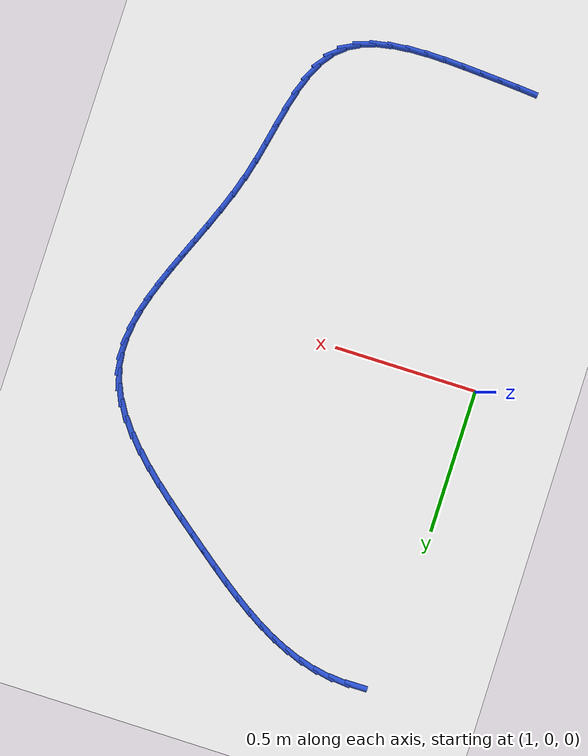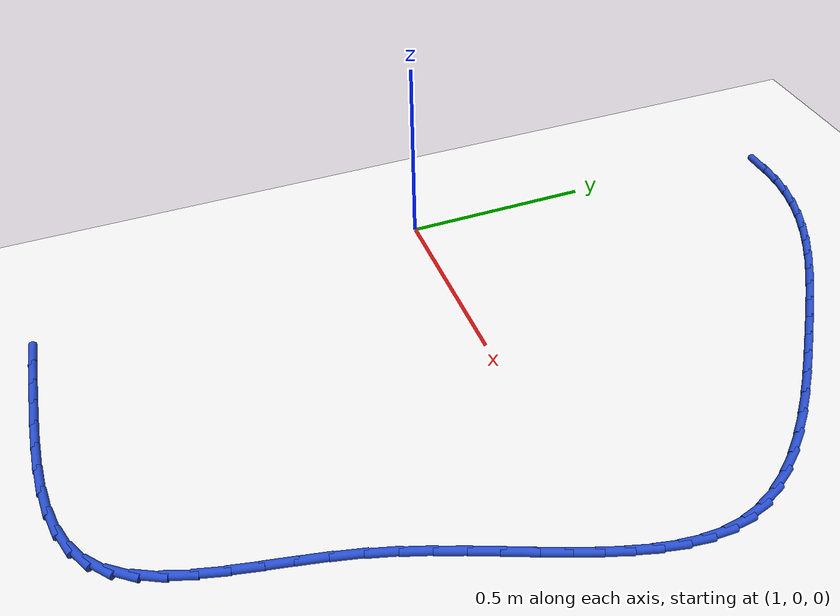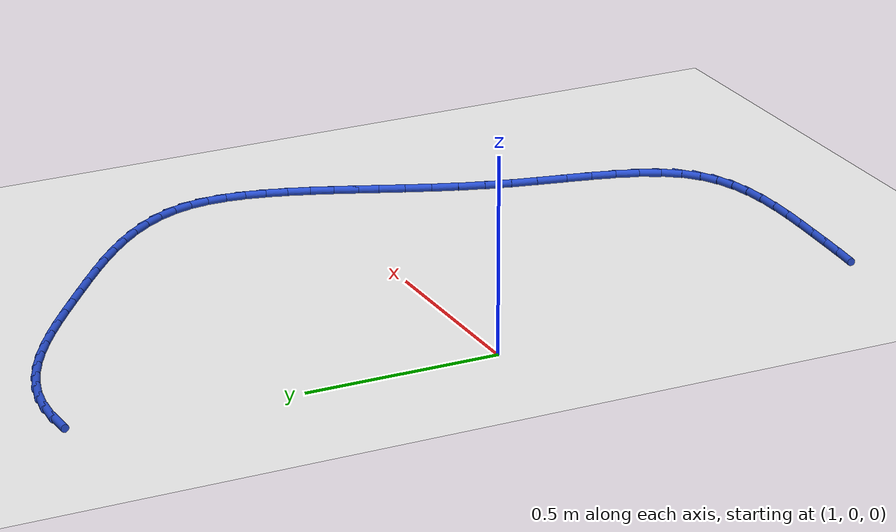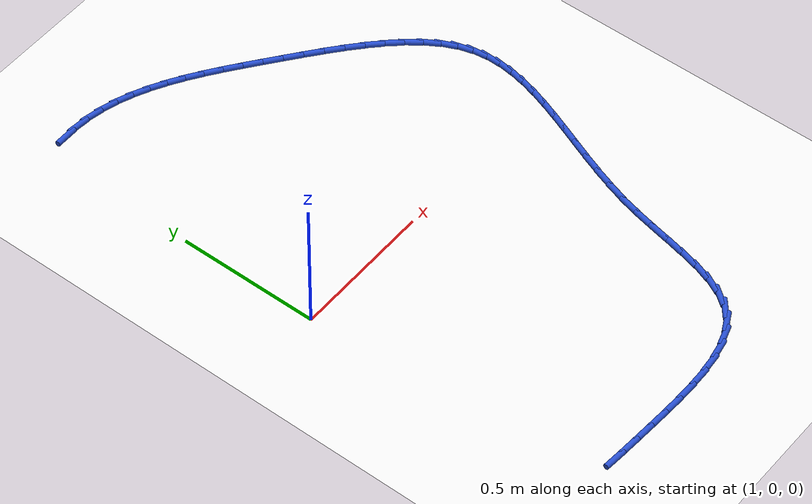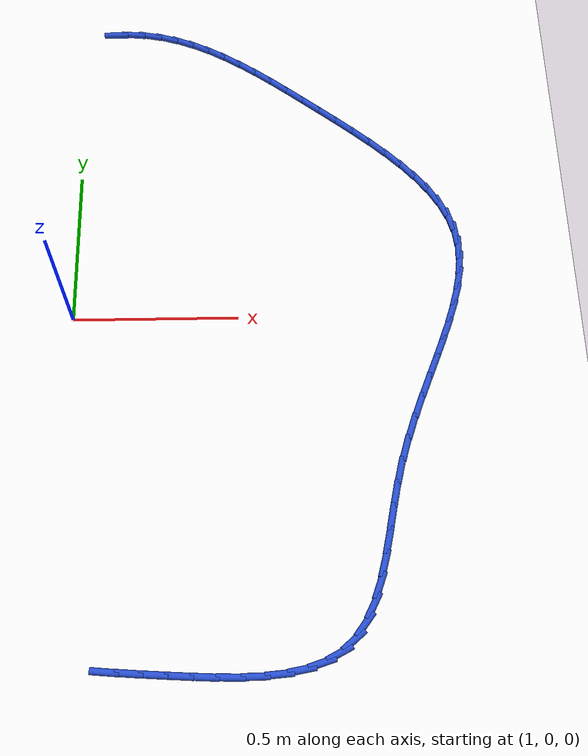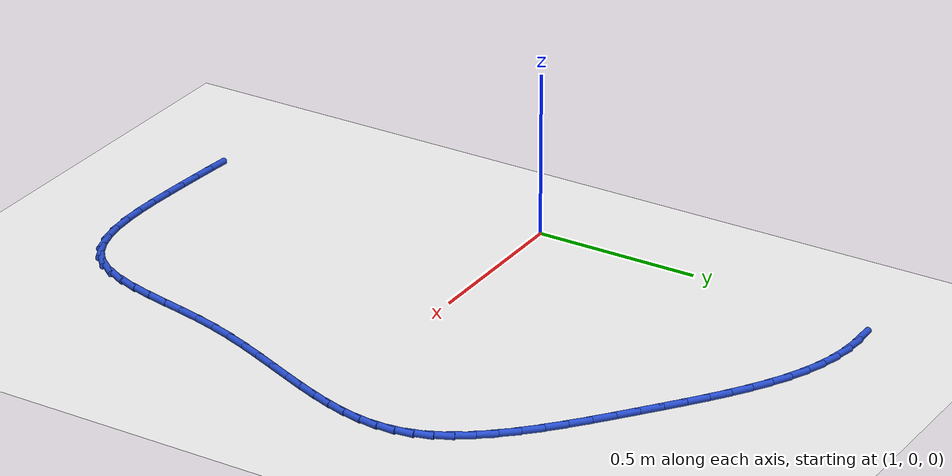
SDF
<sdf version="1.6">
 <world name="default">
  <model name="ground_plane">
   <static>1</static>
   <link name="link">
    <collision name="collision">
     <geometry><plane><normal>0 0 1</normal><size>100 100</size></plane></geometry>
     <surface><friction><ode><mu>100</mu><mu2>50</mu2></ode></friction></surface>
    </collision>
    <visual name="visual">
     <cast_shadows>0</cast_shadows>
     <geometry><plane><normal>0 0 1</normal><size>100 100</size></plane></geometry>
     <material>
      <script><uri>file://media/materials/scripts/gazebo.material</uri><name>Gazebo/WhiteGlow</name></script>
     </material>
    </visual>
   </link>
  </model>
  <model name="line">
   <link name="link_27">
    <pose>1.0877395246062442 1.07236111550204 0.01 0 1.57 0.007127805576924916</pose>
    <collision name="collision">
     <geometry><cylinder><radius>0.01</radius><length>0.08</length></cylinder></geometry>
    </collision>
    <visual name="visual">
     <material>
      <script><name>Gazebo/Blue</name><uri>file://media/materials/scripts/gazebo.material</uri></script>
     </material>
     <geometry><cylinder><radius>0.01</radius><length>0.08</length></cylinder></geometry>
    </visual>
   </link>
   <link name="link_28">
    <pose>1.1466282684342541 1.0727808701273698 0.01 0 1.57 -0.09570957272934058</pose>
    <collision name="collision">
     <geometry><cylinder><radius>0.01</radius><length>0.08</length></cylinder></geometry>
    </collision>
    <visual name="visual">
     <material>
      <script><name>Gazebo/Blue</name><uri>file://media/materials/scripts/gazebo.material</uri></script>
     </material>
     <geometry><cylinder><radius>0.01</radius><length>0.08</length></cylinder></geometry>
    </visual>
   </link>
   <link name="link_29">
    <pose>1.2043351831482425 1.0672408394816044 0.01 0 1.57 -0.19996147020917304</pose>
    <collision name="collision">
     <geometry><cylinder><radius>0.01</radius><length>0.08</length></cylinder></geometry>
    </collision>
    <visual name="visual">
     <material>
      <script><name>Gazebo/Blue</name><uri>file://media/materials/scripts/gazebo.material</uri></script>
     </material>
     <geometry><cylinder><radius>0.01</radius><length>0.08</length></cylinder></geometry>
    </visual>
   </link>
   <link name="link_30">
    <pose>1.2608241019584034 1.055792234667877 0.01 0 1.57 -0.2948685593442447</pose>
    <collision name="collision">
     <geometry><cylinder><radius>0.01</radius><length>0.08</length></cylinder></geometry>
    </collision>
    <visual name="visual">
     <material>
      <script><name>Gazebo/Blue</name><uri>file://media/materials/scripts/gazebo.material</uri></script>
     </material>
     <geometry><cylinder><radius>0.01</radius><length>0.08</length></cylinder></geometry>
    </visual>
   </link>
   <link name="link_31">
    <pose>1.3162611271511389 1.038954754557548 0.01 0 1.57 -0.3784954328951223</pose>
    <collision name="collision">
     <geometry><cylinder><radius>0.01</radius><length>0.08</length></cylinder></geometry>
    </collision>
    <visual name="visual">
     <material>
      <script><name>Gazebo/Blue</name><uri>file://media/materials/scripts/gazebo.material</uri></script>
     </material>
     <geometry><cylinder><radius>0.01</radius><length>0.08</length></cylinder></geometry>
    </visual>
   </link>
   <link name="link_32">
    <pose>1.3708172663647749 1.0172594596073372 0.01 0 1.57 -0.4501707449325843</pose>
    <collision name="collision">
     <geometry><cylinder><radius>0.01</radius><length>0.08</length></cylinder></geometry>
    </collision>
    <visual name="visual">
     <material>
      <script><name>Gazebo/Blue</name><uri>file://media/materials/scripts/gazebo.material</uri></script>
     </material>
     <geometry><cylinder><radius>0.01</radius><length>0.08</length></cylinder></geometry>
    </visual>
   </link>
   <link name="link_33">
    <pose>1.4246635272376371 0.9912374102739651 0.01 0 1.57 -0.5099969988329177</pose>
    <collision name="collision">
     <geometry><cylinder><radius>0.01</radius><length>0.08</length></cylinder></geometry>
    </collision>
    <visual name="visual">
     <material>
      <script><name>Gazebo/Blue</name><uri>file://media/materials/scripts/gazebo.material</uri></script>
     </material>
     <geometry><cylinder><radius>0.01</radius><length>0.08</length></cylinder></geometry>
    </visual>
   </link>
   <link name="link_34">
    <pose>1.477970917408052 0.9614196670141517 0.01 0 1.57 -0.5585337356996433</pose>
    <collision name="collision">
     <geometry><cylinder><radius>0.01</radius><length>0.08</length></cylinder></geometry>
    </collision>
    <visual name="visual">
     <material>
      <script><name>Gazebo/Blue</name><uri>file://media/materials/scripts/gazebo.material</uri></script>
     </material>
     <geometry><cylinder><radius>0.01</radius><length>0.08</length></cylinder></geometry>
    </visual>
   </link>
   <link name="link_35">
    <pose>1.5309104445143444 0.9283372902846164 0.01 0 1.57 -0.5965402304207557</pose>
    <collision name="collision">
     <geometry><cylinder><radius>0.01</radius><length>0.08</length></cylinder></geometry>
    </collision>
    <visual name="visual">
     <material>
      <script><name>Gazebo/Blue</name><uri>file://media/materials/scripts/gazebo.material</uri></script>
     </material>
     <geometry><cylinder><radius>0.01</radius><length>0.08</length></cylinder></geometry>
    </visual>
   </link>
   <link name="link_36">
    <pose>1.5836531161948413 0.8925213405420802 0.01 0 1.57 -0.6248015395837749</pose>
    <collision name="collision">
     <geometry><cylinder><radius>0.01</radius><length>0.08</length></cylinder></geometry>
    </collision>
    <visual name="visual">
     <material>
      <script><name>Gazebo/Blue</name><uri>file://media/materials/scripts/gazebo.material</uri></script>
     </material>
     <geometry><cylinder><radius>0.01</radius><length>0.08</length></cylinder></geometry>
    </visual>
   </link>
   <link name="link_37">
    <pose>1.636369940087868 0.8545028782432627 0.01 0 1.57 -0.6440266672046611</pose>
    <collision name="collision">
     <geometry><cylinder><radius>0.01</radius><length>0.08</length></cylinder></geometry>
    </collision>
    <visual name="visual">
     <material>
      <script><name>Gazebo/Blue</name><uri>file://media/materials/scripts/gazebo.material</uri></script>
     </material>
     <geometry><cylinder><radius>0.01</radius><length>0.08</length></cylinder></geometry>
    </visual>
   </link>
   <link name="link_38">
    <pose>1.689231923831751 0.8148129638448842 0.01 0 1.57 -0.6547975574508484</pose>
    <collision name="collision">
     <geometry><cylinder><radius>0.01</radius><length>0.08</length></cylinder></geometry>
    </collision>
    <visual name="visual">
     <material>
      <script><name>Gazebo/Blue</name><uri>file://media/materials/scripts/gazebo.material</uri></script>
     </material>
     <geometry><cylinder><radius>0.01</radius><length>0.08</length></cylinder></geometry>
    </visual>
   </link>
   <link name="link_39">
    <pose>1.742410075064815 0.7739826578036646 0.01 0 1.57 -0.6584930236418793</pose>
    <collision name="collision">
     <geometry><cylinder><radius>0.01</radius><length>0.08</length></cylinder></geometry>
    </collision>
    <visual name="visual">
     <material>
      <script><name>Gazebo/Blue</name><uri>file://media/materials/scripts/gazebo.material</uri></script>
     </material>
     <geometry><cylinder><radius>0.01</radius><length>0.08</length></cylinder></geometry>
    </visual>
   </link>
   <link name="link_40">
    <pose>1.7960160230123785 0.7325081086991896 0.01 0 1.57 -0.6651095881403096</pose>
    <collision name="collision">
     <geometry><cylinder><radius>0.01</radius><length>0.08</length></cylinder></geometry>
    </collision>
    <visual name="visual">
     <material>
      <script><name>Gazebo/Blue</name><uri>file://media/materials/scripts/gazebo.material</uri></script>
     </material>
     <geometry><cylinder><radius>0.01</radius><length>0.08</length></cylinder></geometry>
    </visual>
   </link>
   <link name="link_41">
    <pose>1.8495456919876698 0.6905234578906978 0.01 0 1.57 -0.6805926360020078</pose>
    <collision name="collision">
     <geometry><cylinder><radius>0.01</radius><length>0.08</length></cylinder></geometry>
    </collision>
    <visual name="visual">
     <material>
      <script><name>Gazebo/Blue</name><uri>file://media/materials/scripts/gazebo.material</uri></script>
     </material>
     <geometry><cylinder><radius>0.01</radius><length>0.08</length></cylinder></geometry>
    </visual>
   </link>
   <link name="link_42">
    <pose>1.9021305388110337 0.6479485559929223 0.01 0 1.57 -0.7055952705035884</pose>
    <collision name="collision">
     <geometry><cylinder><radius>0.01</radius><length>0.08</length></cylinder></geometry>
    </collision>
    <visual name="visual">
     <material>
      <script><name>Gazebo/Blue</name><uri>file://media/materials/scripts/gazebo.material</uri></script>
     </material>
     <geometry><cylinder><radius>0.01</radius><length>0.08</length></cylinder></geometry>
    </visual>
   </link>
   <link name="link_43">
    <pose>1.9528972615438622 0.604700455681087 0.01 0 1.57 -0.741214612557717</pose>
    <collision name="collision">
     <geometry><cylinder><radius>0.01</radius><length>0.08</length></cylinder></geometry>
    </collision>
    <visual name="visual">
     <material>
      <script><name>Gazebo/Blue</name><uri>file://media/materials/scripts/gazebo.material</uri></script>
     </material>
     <geometry><cylinder><radius>0.01</radius><length>0.08</length></cylinder></geometry>
    </visual>
   </link>
   <link name="link_44">
    <pose>2.0009725582475477 0.5606962096304146 0.01 0 1.57 -0.7891223300053972</pose>
    <collision name="collision">
     <geometry><cylinder><radius>0.01</radius><length>0.08</length></cylinder></geometry>
    </collision>
    <visual name="visual">
     <material>
      <script><name>Gazebo/Blue</name><uri>file://media/materials/scripts/gazebo.material</uri></script>
     </material>
     <geometry><cylinder><radius>0.01</radius><length>0.08</length></cylinder></geometry>
    </visual>
   </link>
   <link name="link_45">
    <pose>2.045483126983483 0.5158528705161288 0.01 0 1.57 -0.8516219976016098</pose>
    <collision name="collision">
     <geometry><cylinder><radius>0.01</radius><length>0.08</length></cylinder></geometry>
    </collision>
    <visual name="visual">
     <material>
      <script><name>Gazebo/Blue</name><uri>file://media/materials/scripts/gazebo.material</uri></script>
     </material>
     <geometry><cylinder><radius>0.01</radius><length>0.08</length></cylinder></geometry>
    </visual>
   </link>
   <link name="link_46">
    <pose>2.0855556658130596 0.4700874910134528 0.01 0 1.57 -0.9316411941706095</pose>
    <collision name="collision">
     <geometry><cylinder><radius>0.01</radius><length>0.08</length></cylinder></geometry>
    </collision>
    <visual name="visual">
     <material>
      <script><name>Gazebo/Blue</name><uri>file://media/materials/scripts/gazebo.material</uri></script>
     </material>
     <geometry><cylinder><radius>0.01</radius><length>0.08</length></cylinder></geometry>
    </visual>
   </link>
   <link name="link_47">
    <pose>2.1203168727976704 0.42331712379760994 0.01 0 1.57 -1.032506040386779</pose>
    <collision name="collision">
     <geometry><cylinder><radius>0.01</radius><length>0.08</length></cylinder></geometry>
    </collision>
    <visual name="visual">
     <material>
      <script><name>Gazebo/Blue</name><uri>file://media/materials/scripts/gazebo.material</uri></script>
     </material>
     <geometry><cylinder><radius>0.01</radius><length>0.08</length></cylinder></geometry>
    </visual>
   </link>
   <link name="link_48">
    <pose>2.1488934459987084 0.3754588215438235 0.01 0 1.57 -1.1572160532332605</pose>
    <collision name="collision">
     <geometry><cylinder><radius>0.01</radius><length>0.08</length></cylinder></geometry>
    </collision>
    <visual name="visual">
     <material>
      <script><name>Gazebo/Blue</name><uri>file://media/materials/scripts/gazebo.material</uri></script>
     </material>
     <geometry><cylinder><radius>0.01</radius><length>0.08</length></cylinder></geometry>
    </visual>
   </link>
   <link name="link_49">
    <pose>2.1704120834775664 0.32642963692731686 0.01 0 1.57 -1.3063284636319465</pose>
    <collision name="collision">
     <geometry><cylinder><radius>0.01</radius><length>0.08</length></cylinder></geometry>
    </collision>
    <visual name="visual">
     <material>
      <script><name>Gazebo/Blue</name><uri>file://media/materials/scripts/gazebo.material</uri></script>
     </material>
     <geometry><cylinder><radius>0.01</radius><length>0.08</length></cylinder></geometry>
    </visual>
   </link>
   <link name="link_50">
    <pose>2.1840288956430958 0.2761480876895391 0.01 0 1.57 -1.4611248681924276</pose>
    <collision name="collision">
     <geometry><cylinder><radius>0.01</radius><length>0.08</length></cylinder></geometry>
    </collision>
    <visual name="visual">
     <material>
      <script><name>Gazebo/Blue</name><uri>file://media/materials/scripts/gazebo.material</uri></script>
     </material>
     <geometry><cylinder><radius>0.01</radius><length>0.08</length></cylinder></geometry>
    </visual>
   </link>
   <link name="link_51">
    <pose>2.189708004750599 0.22457293966393402 0.01 0 1.57 1.544209983054725</pose>
    <collision name="collision">
     <geometry><cylinder><radius>0.01</radius><length>0.08</length></cylinder></geometry>
    </collision>
    <visual name="visual">
     <material>
      <script><name>Gazebo/Blue</name><uri>file://media/materials/scripts/gazebo.material</uri></script>
     </material>
     <geometry><cylinder><radius>0.01</radius><length>0.08</length></cylinder></geometry>
    </visual>
   </link>
   <link name="link_52">
    <pose>2.1883021673802143 0.17170722268355415 0.01 0 1.57 1.4314956053360388</pose>
    <collision name="collision">
     <geometry><cylinder><radius>0.01</radius><length>0.08</length></cylinder></geometry>
    </collision>
    <visual name="visual">
     <material>
      <script><name>Gazebo/Blue</name><uri>file://media/materials/scripts/gazebo.material</uri></script>
     </material>
     <geometry><cylinder><radius>0.01</radius><length>0.08</length></cylinder></geometry>
    </visual>
   </link>
   <link name="link_53">
    <pose>2.18070972269254 0.1175562371074352 0.01 0 1.57 1.3424743796786727</pose>
    <collision name="collision">
     <geometry><cylinder><radius>0.01</radius><length>0.08</length></cylinder></geometry>
    </collision>
    <visual name="visual">
     <material>
      <script><name>Gazebo/Blue</name><uri>file://media/materials/scripts/gazebo.material</uri></script>
     </material>
     <geometry><cylinder><radius>0.01</radius><length>0.08</length></cylinder></geometry>
    </visual>
   </link>
   <link name="link_54">
    <pose>2.167829009848174 0.062125283294612546 0.01 0 1.57 1.2751552189835038</pose>
    <collision name="collision">
     <geometry><cylinder><radius>0.01</radius><length>0.08</length></cylinder></geometry>
    </collision>
    <visual name="visual">
     <material>
      <script><name>Gazebo/Blue</name><uri>file://media/materials/scripts/gazebo.material</uri></script>
     </material>
     <geometry><cylinder><radius>0.01</radius><length>0.08</length></cylinder></geometry>
    </visual>
   </link>
   <link name="link_55">
    <pose>2.1505583680077156 0.005419661604121745 0.01 0 1.57 1.2269025544419423</pose>
    <collision name="collision">
     <geometry><cylinder><radius>0.01</radius><length>0.08</length></cylinder></geometry>
    </collision>
    <visual name="visual">
     <material>
      <script><name>Gazebo/Blue</name><uri>file://media/materials/scripts/gazebo.material</uri></script>
     </material>
     <geometry><cylinder><radius>0.01</radius><length>0.08</length></cylinder></geometry>
    </visual>
   </link>
   <link name="link_56">
    <pose>2.1297961363317635 -0.052555327605001284 0.01 0 1.57 1.1952495765652593</pose>
    <collision name="collision">
     <geometry><cylinder><radius>0.01</radius><length>0.08</length></cylinder></geometry>
    </collision>
    <visual name="visual">
     <material>
      <script><name>Gazebo/Blue</name><uri>file://media/materials/scripts/gazebo.material</uri></script>
     </material>
     <geometry><cylinder><radius>0.01</radius><length>0.08</length></cylinder></geometry>
    </visual>
   </link>
   <link name="link_57">
    <pose>2.1064406539809153 -0.11179438397372221 0.01 0 1.57 1.1782189396695175</pose>
    <collision name="collision">
     <geometry><cylinder><radius>0.01</radius><length>0.08</length></cylinder></geometry>
    </collision>
    <visual name="visual">
     <material>
      <script><name>Gazebo/Blue</name><uri>file://media/materials/scripts/gazebo.material</uri></script>
     </material>
     <geometry><cylinder><radius>0.01</radius><length>0.08</length></cylinder></geometry>
    </visual>
   </link>
   <link name="link_58">
    <pose>2.0813902601157706 -0.17229220714300403 0.01 0 1.57 1.1743882638601177</pose>
    <collision name="collision">
     <geometry><cylinder><radius>0.01</radius><length>0.08</length></cylinder></geometry>
    </collision>
    <visual name="visual">
     <material>
      <script><name>Gazebo/Blue</name><uri>file://media/materials/scripts/gazebo.material</uri></script>
     </material>
     <geometry><cylinder><radius>0.01</radius><length>0.08</length></cylinder></geometry>
    </visual>
   </link>
   <link name="link_59">
    <pose>2.0555432938969274 -0.2340434967538127 0.01 0 1.57 1.1828489482236368</pose>
    <collision name="collision">
     <geometry><cylinder><radius>0.01</radius><length>0.08</length></cylinder></geometry>
    </collision>
    <visual name="visual">
     <material>
      <script><name>Gazebo/Blue</name><uri>file://media/materials/scripts/gazebo.material</uri></script>
     </material>
     <geometry><cylinder><radius>0.01</radius><length>0.08</length></cylinder></geometry>
    </visual>
   </link>
   <link name="link_60">
    <pose>2.029798094484984 -0.2970429524471112 0.01 0 1.57 1.2031275303009645</pose>
    <collision name="collision">
     <geometry><cylinder><radius>0.01</radius><length>0.08</length></cylinder></geometry>
    </collision>
    <visual name="visual">
     <material>
      <script><name>Gazebo/Blue</name><uri>file://media/materials/scripts/gazebo.material</uri></script>
     </material>
     <geometry><cylinder><radius>0.01</radius><length>0.08</length></cylinder></geometry>
    </visual>
   </link>
   <link name="link_61">
    <pose>2.00505300104054 -0.3612852738638656 0.01 0 1.57 1.2350920532636136</pose>
    <collision name="collision">
     <geometry><cylinder><radius>0.01</radius><length>0.08</length></cylinder></geometry>
    </collision>
    <visual name="visual">
     <material>
      <script><name>Gazebo/Blue</name><uri>file://media/materials/scripts/gazebo.material</uri></script>
     </material>
     <geometry><cylinder><radius>0.01</radius><length>0.08</length></cylinder></geometry>
    </visual>
   </link>
   <link name="link_62">
    <pose>1.9822063527241927 -0.4267651606450388 0.01 0 1.57 1.2788384142394815</pose>
    <collision name="collision">
     <geometry><cylinder><radius>0.01</radius><length>0.08</length></cylinder></geometry>
    </collision>
    <visual name="visual">
     <material>
      <script><name>Gazebo/Blue</name><uri>file://media/materials/scripts/gazebo.material</uri></script>
     </material>
     <geometry><cylinder><radius>0.01</radius><length>0.08</length></cylinder></geometry>
    </visual>
   </link>
   <link name="link_63">
    <pose>1.962156293078304 -0.4934772099608126 0.01 0 1.57 1.3269558710448814</pose>
    <collision name="collision">
     <geometry><cylinder><radius>0.01</radius><length>0.08</length></cylinder></geometry>
    </collision>
    <visual name="visual">
     <material>
      <script><name>Gazebo/Blue</name><uri>file://media/materials/scripts/gazebo.material</uri></script>
     </material>
     <geometry><cylinder><radius>0.01</radius><length>0.08</length></cylinder></geometry>
    </visual>
   </link>
   <link name="link_64">
    <pose>1.945316824341553 -0.5611624110373826 0.01 0 1.57 1.3560875372397774</pose>
    <collision name="collision">
     <geometry><cylinder><radius>0.01</radius><length>0.08</length></cylinder></geometry>
    </collision>
    <visual name="visual">
     <material>
      <script><name>Gazebo/Blue</name><uri>file://media/materials/scripts/gazebo.material</uri></script>
     </material>
     <geometry><cylinder><radius>0.01</radius><length>0.08</length></cylinder></geometry>
    </visual>
   </link>
   <link name="link_65">
    <pose>1.93057535598583 -0.628762077365908 0.01 0 1.57 1.3618752081792236</pose>
    <collision name="collision">
     <geometry><cylinder><radius>0.01</radius><length>0.08</length></cylinder></geometry>
    </collision>
    <visual name="visual">
     <material>
      <script><name>Gazebo/Blue</name><uri>file://media/materials/scripts/gazebo.material</uri></script>
     </material>
     <geometry><cylinder><radius>0.01</radius><length>0.08</length></cylinder></geometry>
    </visual>
   </link>
   <link name="link_66">
    <pose>1.9165191516556772 -0.6950602969217937 0.01 0 1.57 1.3430298635231093</pose>
    <collision name="collision">
     <geometry><cylinder><radius>0.01</radius><length>0.08</length></cylinder></geometry>
    </collision>
    <visual name="visual">
     <material>
      <script><name>Gazebo/Blue</name><uri>file://media/materials/scripts/gazebo.material</uri></script>
     </material>
     <geometry><cylinder><radius>0.01</radius><length>0.08</length></cylinder></geometry>
    </visual>
   </link>
   <link name="link_67">
    <pose>1.901735474995637 -0.7588411576804427 0.01 0 1.57 1.2960810886293261</pose>
    <collision name="collision">
     <geometry><cylinder><radius>0.01</radius><length>0.08</length></cylinder></geometry>
    </collision>
    <visual name="visual">
     <material>
      <script><name>Gazebo/Blue</name><uri>file://media/materials/scripts/gazebo.material</uri></script>
     </material>
     <geometry><cylinder><radius>0.01</radius><length>0.08</length></cylinder></geometry>
    </visual>
   </link>
   <link name="link_68">
    <pose>1.8848115896502495 -0.8188887476172607 0.01 0 1.57 1.2149737281497803</pose>
    <collision name="collision">
     <geometry><cylinder><radius>0.01</radius><length>0.08</length></cylinder></geometry>
    </collision>
    <visual name="visual">
     <material>
      <script><name>Gazebo/Blue</name><uri>file://media/materials/scripts/gazebo.material</uri></script>
     </material>
     <geometry><cylinder><radius>0.01</radius><length>0.08</length></cylinder></geometry>
    </visual>
   </link>
   <link name="link_69">
    <pose>1.8643347592640571 -0.8739871547076505 0.01 0 1.57 1.0913222474319788</pose>
    <collision name="collision">
     <geometry><cylinder><radius>0.01</radius><length>0.08</length></cylinder></geometry>
    </collision>
    <visual name="visual">
     <material>
      <script><name>Gazebo/Blue</name><uri>file://media/materials/scripts/gazebo.material</uri></script>
     </material>
     <geometry><cylinder><radius>0.01</radius><length>0.08</length></cylinder></geometry>
    </visual>
   </link>
   <link name="link_70">
    <pose>1.8388922474816014 -0.9229204669270176 0.01 0 1.57 0.9172570257787336</pose>
    <collision name="collision">
     <geometry><cylinder><radius>0.01</radius><length>0.08</length></cylinder></geometry>
    </collision>
    <visual name="visual">
     <material>
      <script><name>Gazebo/Blue</name><uri>file://media/materials/scripts/gazebo.material</uri></script>
     </material>
     <geometry><cylinder><radius>0.01</radius><length>0.08</length></cylinder></geometry>
    </visual>
   </link>
   <link name="link_71">
    <pose>1.8070713179474247 -0.9644727722507654 0.01 0 1.57 0.6950251918182343</pose>
    <collision name="collision">
     <geometry><cylinder><radius>0.01</radius><length>0.08</length></cylinder></geometry>
    </collision>
    <visual name="visual">
     <material>
      <script><name>Gazebo/Blue</name><uri>file://media/materials/scripts/gazebo.material</uri></script>
     </material>
     <geometry><cylinder><radius>0.01</radius><length>0.08</length></cylinder></geometry>
    </visual>
   </link>
   <link name="link_72">
    <pose>1.7675022534777338 -0.9974662342418062 0.01 0 1.57 0.4736755784222673</pose>
    <collision name="collision">
     <geometry><cylinder><radius>0.01</radius><length>0.08</length></cylinder></geometry>
    </collision>
    <visual name="visual">
     <material>
      <script><name>Gazebo/Blue</name><uri>file://media/materials/scripts/gazebo.material</uri></script>
     </material>
     <geometry><cylinder><radius>0.01</radius><length>0.08</length></cylinder></geometry>
    </visual>
   </link>
   <link name="link_73">
    <pose>1.7200316793072987 -1.0217995818733676 0.01 0 1.57 0.3002941949907739</pose>
    <collision name="collision">
     <geometry><cylinder><radius>0.01</radius><length>0.08</length></cylinder></geometry>
    </collision>
    <visual name="visual">
     <material>
      <script><name>Gazebo/Blue</name><uri>file://media/materials/scripts/gazebo.material</uri></script>
     </material>
     <geometry><cylinder><radius>0.01</radius><length>0.08</length></cylinder></geometry>
    </visual>
   </link>
   <link name="link_74">
    <pose>1.665863814082675 -1.038573128545978 0.01 0 1.57 0.1724160990122847</pose>
    <collision name="collision">
     <geometry><cylinder><radius>0.01</radius><length>0.08</length></cylinder></geometry>
    </collision>
    <visual name="visual">
     <material>
      <script><name>Gazebo/Blue</name><uri>file://media/materials/scripts/gazebo.material</uri></script>
     </material>
     <geometry><cylinder><radius>0.01</radius><length>0.08</length></cylinder></geometry>
    </visual>
   </link>
   <link name="link_75">
    <pose>1.606274252757186 -1.0489503616988292 0.01 0 1.57 0.08054013449667119</pose>
    <collision name="collision">
     <geometry><cylinder><radius>0.01</radius><length>0.08</length></cylinder></geometry>
    </collision>
    <visual name="visual">
     <material>
      <script><name>Gazebo/Blue</name><uri>file://media/materials/scripts/gazebo.material</uri></script>
     </material>
     <geometry><cylinder><radius>0.01</radius><length>0.08</length></cylinder></geometry>
    </visual>
   </link>
   <link name="link_76">
    <pose>1.5425385902841537 -1.0540947687711142 0.01 0 1.57 0.016139272196341946</pose>
    <collision name="collision">
     <geometry><cylinder><radius>0.01</radius><length>0.08</length></cylinder></geometry>
    </collision>
    <visual name="visual">
     <material>
      <script><name>Gazebo/Blue</name><uri>file://media/materials/scripts/gazebo.material</uri></script>
     </material>
     <geometry><cylinder><radius>0.01</radius><length>0.08</length></cylinder></geometry>
    </visual>
   </link>
   <link name="link_77">
    <pose>1.475932421616901 -1.0551698372020246 0.01 0 1.57 -0.026837452030280172</pose>
    <collision name="collision">
     <geometry><cylinder><radius>0.01</radius><length>0.08</length></cylinder></geometry>
    </collision>
    <visual name="visual">
     <material>
      <script><name>Gazebo/Blue</name><uri>file://media/materials/scripts/gazebo.material</uri></script>
     </material>
     <geometry><cylinder><radius>0.01</radius><length>0.08</length></cylinder></geometry>
    </visual>
   </link>
   <link name="link_78">
    <pose>1.4077313417087478 -1.0533390544307524 0.01 0 1.57 -0.05210000455060438</pose>
    <collision name="collision">
     <geometry><cylinder><radius>0.01</radius><length>0.08</length></cylinder></geometry>
    </collision>
    <visual name="visual">
     <material>
      <script><name>Gazebo/Blue</name><uri>file://media/materials/scripts/gazebo.material</uri></script>
     </material>
     <geometry><cylinder><radius>0.01</radius><length>0.08</length></cylinder></geometry>
    </visual>
   </link>
   <link name="link_79">
    <pose>1.3392109455130188 -1.0497659078964898 0.01 0 1.57 -0.0618762389272113</pose>
    <collision name="collision">
     <geometry><cylinder><radius>0.01</radius><length>0.08</length></cylinder></geometry>
    </collision>
    <visual name="visual">
     <material>
      <script><name>Gazebo/Blue</name><uri>file://media/materials/scripts/gazebo.material</uri></script>
     </material>
     <geometry><cylinder><radius>0.01</radius><length>0.08</length></cylinder></geometry>
    </visual>
   </link>
   <link name="link_80">
    <pose>1.2716135957990289 -1.0455778919277758 0.01 0 1.57 -0.06645423317648995</pose>
    <collision name="collision">
     <geometry><cylinder><radius>0.01</radius><length>0.08</length></cylinder></geometry>
    </collision>
    <visual name="visual">
     <material>
      <script><name>Gazebo/Blue</name><uri>file://media/materials/scripts/gazebo.material</uri></script>
     </material>
     <geometry><cylinder><radius>0.01</radius><length>0.08</length></cylinder></geometry>
    </visual>
   </link>
   <link name="link_81">
    <pose>1.2055134487224013 -1.0411787796983054 0.01 0 1.57 -0.07529165947781556</pose>
    <collision name="collision">
     <geometry><cylinder><radius>0.01</radius><length>0.08</length></cylinder></geometry>
    </collision>
    <visual name="visual">
     <material>
      <script><name>Gazebo/Blue</name><uri>file://media/materials/scripts/gazebo.material</uri></script>
     </material>
     <geometry><cylinder><radius>0.01</radius><length>0.08</length></cylinder></geometry>
    </visual>
   </link>
   <link name="link_82">
    <pose>1.1408658629339248 -1.0363021372398002 0.01 0 1.57 -0.08900873402567022</pose>
    <collision name="collision">
     <geometry><cylinder><radius>0.01</radius><length>0.08</length></cylinder></geometry>
    </collision>
    <visual name="visual">
     <material>
      <script><name>Gazebo/Blue</name><uri>file://media/materials/scripts/gazebo.material</uri></script>
     </material>
     <geometry><cylinder><radius>0.01</radius><length>0.08</length></cylinder></geometry>
    </visual>
   </link>
  </model>
 </world>
</sdf>
